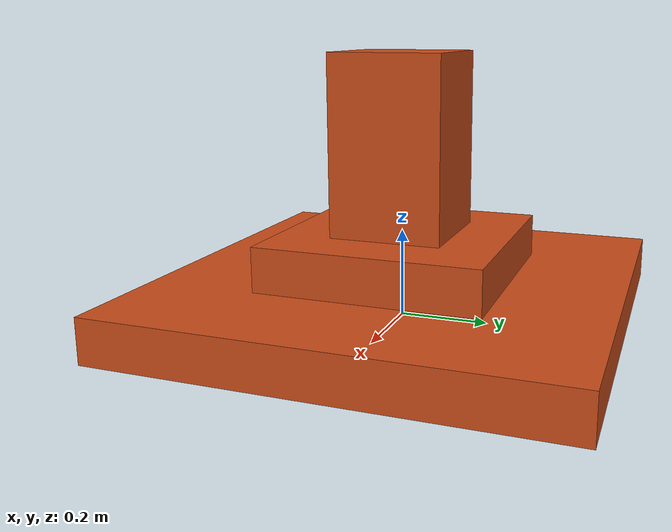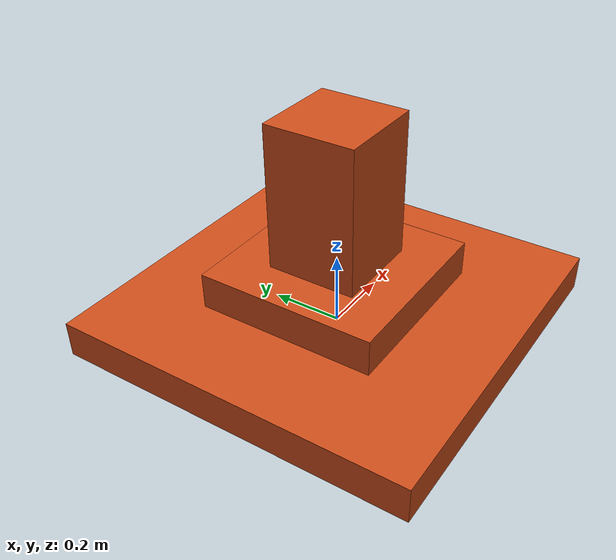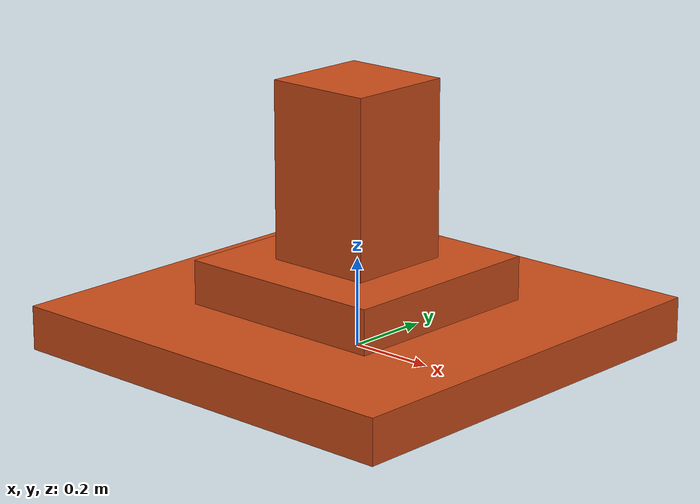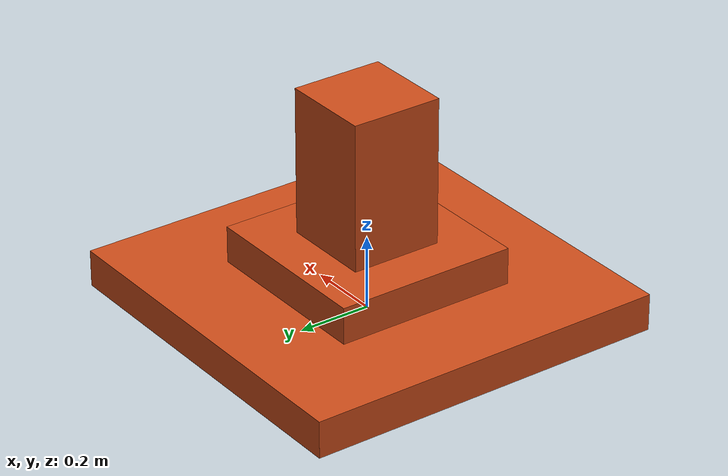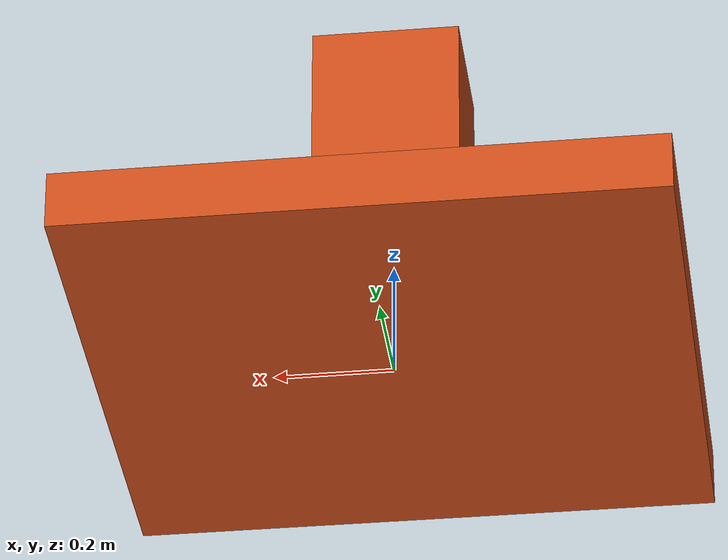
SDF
<?xml version="1.0" ?>
<sdf version="1.6">
  <model name="brick_platform">
    <!-- Base layer (9x9) -->
    <link name="base_layer">
      <pose>0 0 0.05 0 0 0</pose>
      <visual name="visual">
        <geometry>
          <box>
            <size>1 1 0.1</size>
          </box>
        </geometry>
        <material>
          <ambient>0.8 0.3 0.1 1.0</ambient>
          <diffuse>0.8 0.3 0.1 1.0</diffuse>
        </material>
      </visual>
      <collision name="collision">
        <geometry>
          <box>
            <size>1 1 0.1</size>
          </box>
        </geometry>
      </collision>
    </link>

    <!-- Second layer (6x6) -->
    <link name="second_layer">
      <pose>0 0 0.15 0 0 0</pose>
      <visual name="visual">
        <geometry>
          <box>
            <size>.5 .5 0.1</size>
          </box>
        </geometry>
        <material>
          <ambient>0.8 0.3 0.1 1.0</ambient>
          <diffuse>0.8 0.3 0.1 1.0</diffuse>
        </material>
      </visual>
      <collision name="collision">
        <geometry>
          <box>
            <size>.5 .5 0.1</size>
          </box>
        </geometry>
      </collision>
    </link>

    <!-- Pillar (4x4x5) -->
    <link name="pillar">
      <pose>0 0 .35 0 0 0</pose>
      <visual name="visual">
        <geometry>
          <box>
            <size>.25 .25 .5</size>
          </box>
        </geometry>
        <material>
          <ambient>0.8 0.3 0.1 1.0</ambient>
          <diffuse>0.8 0.3 0.1 1.0</diffuse>
        </material>
      </visual>
      <collision name="collision">
        <geometry>
          <box>
            <size>.25 .25 .4</size>
          </box>
        </geometry>
      </collision>
    </link>

    <!-- Fixed joints to connect the layers -->
    <joint name="base_to_second" type="fixed">
      <parent>base_layer</parent>
      <child>second_layer</child>
    </joint>

    <joint name="second_to_pillar" type="fixed">
      <parent>second_layer</parent>
      <child>pillar</child>
    </joint>
  </model>
</sdf>
